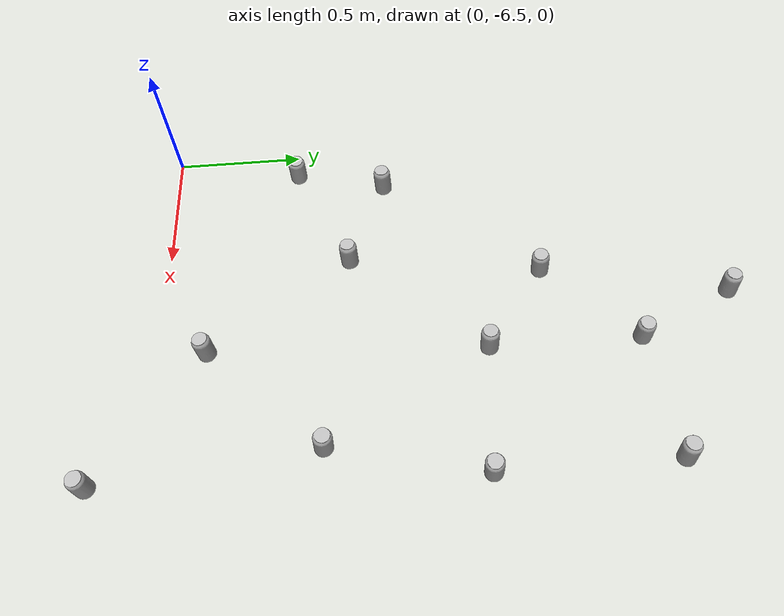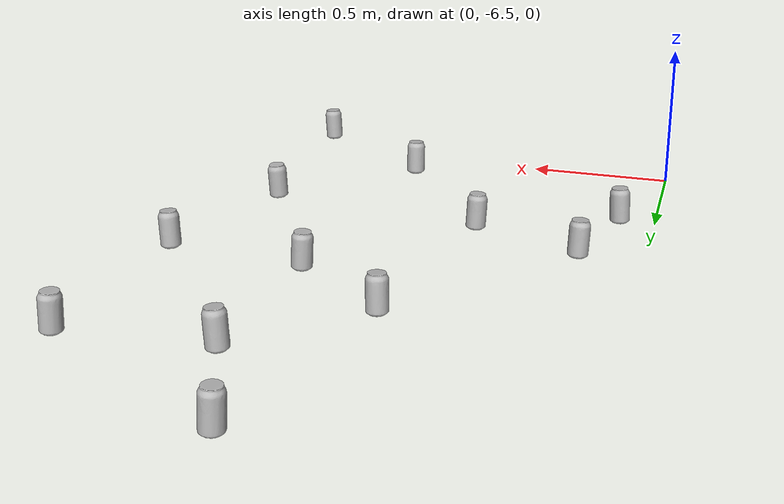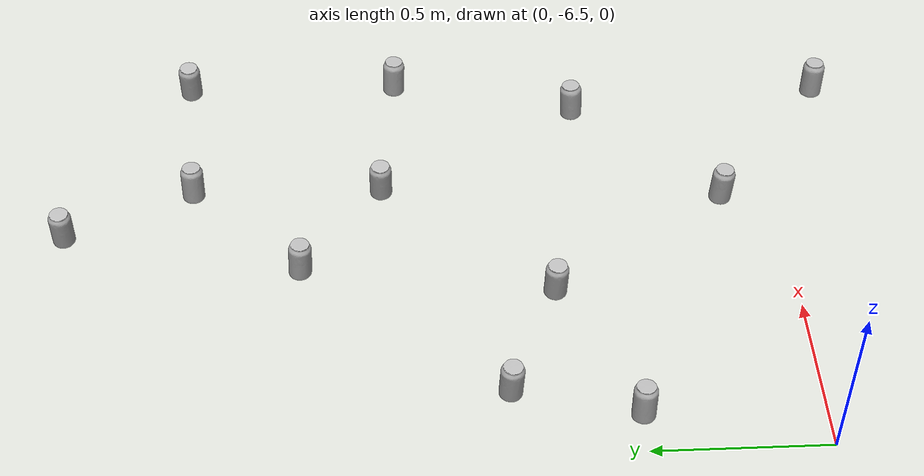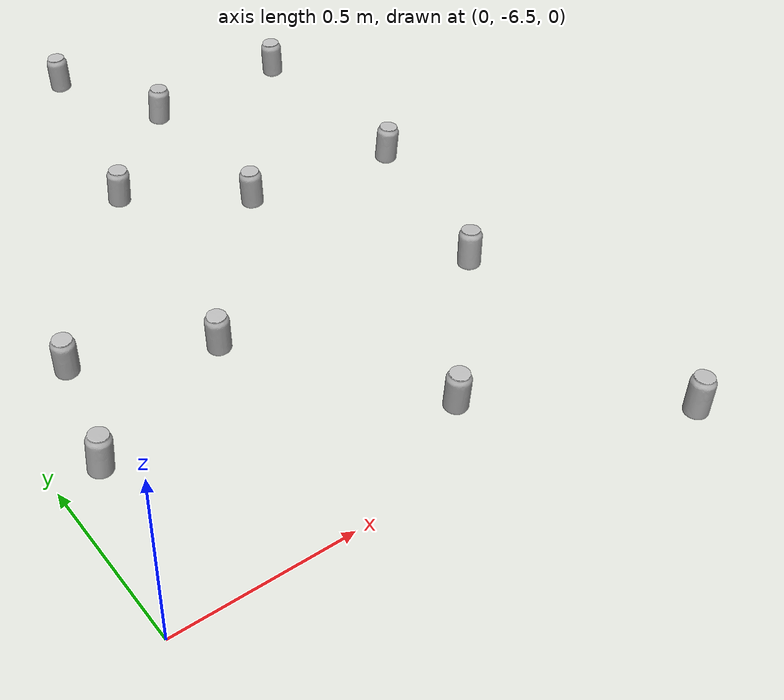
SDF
<sdf version="1.6">
 <world name="default">
  <model name="coke_can148">
   <link name="link">
    <inertial>
     <pose>0 0 0.06 0 -0 0</pose>
     <mass>0.39</mass>
     <inertia>
      <ixx>0.00055575</ixx>
      <ixy>0</ixy>
      <ixz>0</ixz>
      <iyy>0.00055575</iyy>
      <iyz>0</iyz>
      <izz>0.0001755</izz>
     </inertia>
    </inertial>
    <collision name="collision">
     <pose>0.003937 0.004724 -0.18 0 -0 0</pose>
     <geometry><mesh><uri>model://coke_can/meshes/coke_can.dae</uri></mesh></geometry>
     <surface>
      <friction><ode><mu>1</mu><mu2>1</mu2></ode></friction>
      <contact>
       <ode><kp>1e+07</kp><kd>1</kd><min_depth>0.001</min_depth><max_vel>0.1</max_vel></ode>
       <collide_bitmask>256</collide_bitmask>
      </contact>
     </surface>
    </collision>
    <visual name="visual">
     <pose>0.003937 0.004724 -0.18 0 -0 0</pose>
     <geometry><mesh><uri>model://coke_can/meshes/coke_can.dae</uri></mesh></geometry>
    </visual>
   </link>
   <pose>0.208778 -5.64338 -0.002659 -0.055082 0.00776 2.57607</pose>
  </model>
  <model name="coke_can159">
   <link name="link">
    <inertial>
     <pose>0 0 0.06 0 -0 0</pose>
     <mass>0.39</mass>
     <inertia>
      <ixx>0.00055575</ixx>
      <ixy>0</ixy>
      <ixz>0</ixz>
      <iyy>0.00055575</iyy>
      <iyz>0</iyz>
      <izz>0.0001755</izz>
     </inertia>
    </inertial>
    <collision name="collision">
     <pose>0.003937 0.004724 -0.18 0 -0 0</pose>
     <geometry><mesh><uri>model://coke_can/meshes/coke_can.dae</uri></mesh></geometry>
     <surface>
      <friction><ode><mu>1</mu><mu2>1</mu2></ode></friction>
      <contact>
       <ode><kp>1e+07</kp><kd>1</kd><min_depth>0.001</min_depth><max_vel>0.1</max_vel></ode>
       <collide_bitmask>256</collide_bitmask>
      </contact>
     </surface>
    </collision>
    <visual name="visual">
     <pose>0.003937 0.004724 -0.18 0 -0 0</pose>
     <geometry><mesh><uri>model://coke_can/meshes/coke_can.dae</uri></mesh></geometry>
    </visual>
   </link>
   <pose>1.00547 -5.29979 -0.002659 -0.055131 0.007727 1.84196</pose>
  </model>
  <model name="coke_can214">
   <link name="link">
    <inertial>
     <pose>0 0 0.06 0 -0 0</pose>
     <mass>0.39</mass>
     <inertia>
      <ixx>0.00055575</ixx>
      <ixy>0</ixy>
      <ixz>0</ixz>
      <iyy>0.00055575</iyy>
      <iyz>0</iyz>
      <izz>0.0001755</izz>
     </inertia>
    </inertial>
    <collision name="collision">
     <pose>0.003937 0.004724 -0.18 0 -0 0</pose>
     <geometry><mesh><uri>model://coke_can/meshes/coke_can.dae</uri></mesh></geometry>
     <surface>
      <friction><ode><mu>1</mu><mu2>1</mu2></ode></friction>
      <contact>
       <ode><kp>1e+07</kp><kd>1</kd><min_depth>0.001</min_depth><max_vel>0.1</max_vel></ode>
       <collide_bitmask>256</collide_bitmask>
      </contact>
     </surface>
    </collision>
    <visual name="visual">
     <pose>0.003937 0.004724 -0.18 0 -0 0</pose>
     <geometry><mesh><uri>model://coke_can/meshes/coke_can.dae</uri></mesh></geometry>
    </visual>
   </link>
   <pose>0.842294 -4.35864 -0.002659 -0.055133 0.007727 1.90653</pose>
  </model>
  <model name="coke_can280">
   <link name="link">
    <inertial>
     <pose>0 0 0.06 0 -0 0</pose>
     <mass>0.39</mass>
     <inertia>
      <ixx>0.00055575</ixx>
      <ixy>0</ixy>
      <ixz>0</ixz>
      <iyy>0.00055575</iyy>
      <iyz>0</iyz>
      <izz>0.0001755</izz>
     </inertia>
    </inertial>
    <collision name="collision">
     <pose>0.003937 0.004724 -0.18 0 -0 0</pose>
     <geometry><mesh><uri>model://coke_can/meshes/coke_can.dae</uri></mesh></geometry>
     <surface>
      <friction><ode><mu>1</mu><mu2>1</mu2></ode></friction>
      <contact>
       <ode><kp>1e+07</kp><kd>1</kd><min_depth>0.001</min_depth><max_vel>0.1</max_vel></ode>
       <collide_bitmask>256</collide_bitmask>
      </contact>
     </surface>
    </collision>
    <visual name="visual">
     <pose>0.003937 0.004724 -0.18 0 -0 0</pose>
     <geometry><mesh><uri>model://coke_can/meshes/coke_can.dae</uri></mesh></geometry>
    </visual>
   </link>
   <pose>0.116772 -5.99744 -0.002659 -0.055126 0.007732 -1.44704</pose>
  </model>
  <model name="coke_can413">
   <link name="link">
    <inertial>
     <pose>0 0 0.06 0 -0 0</pose>
     <mass>0.39</mass>
     <inertia>
      <ixx>0.00055575</ixx>
      <ixy>0</ixy>
      <ixz>0</ixz>
      <iyy>0.00055575</iyy>
      <iyz>0</iyz>
      <izz>0.0001755</izz>
     </inertia>
    </inertial>
    <collision name="collision">
     <pose>0.003937 0.004724 -0.18 0 -0 0</pose>
     <geometry><mesh><uri>model://coke_can/meshes/coke_can.dae</uri></mesh></geometry>
     <surface>
      <friction><ode><mu>1</mu><mu2>1</mu2></ode></friction>
      <contact>
       <ode><kp>1e+07</kp><kd>1</kd><min_depth>0.001</min_depth><max_vel>0.1</max_vel></ode>
       <collide_bitmask>256</collide_bitmask>
      </contact>
     </surface>
    </collision>
    <visual name="visual">
     <pose>0.003937 0.004724 -0.18 0 -0 0</pose>
     <geometry><mesh><uri>model://coke_can/meshes/coke_can.dae</uri></mesh></geometry>
    </visual>
   </link>
   <pose>0.57572 -5.79576 -0.002659 -0.055102 0.007748 2.26488</pose>
  </model>
  <model name="coke_can446">
   <link name="link">
    <inertial>
     <pose>0 0 0.06 0 -0 0</pose>
     <mass>0.39</mass>
     <inertia>
      <ixx>0.00055575</ixx>
      <ixy>0</ixy>
      <ixz>0</ixz>
      <iyy>0.00055575</iyy>
      <iyz>0</iyz>
      <izz>0.0001755</izz>
     </inertia>
    </inertial>
    <collision name="collision">
     <pose>0.003937 0.004724 -0.18 0 -0 0</pose>
     <geometry><mesh><uri>model://coke_can/meshes/coke_can.dae</uri></mesh></geometry>
     <surface>
      <friction><ode><mu>1</mu><mu2>1</mu2></ode></friction>
      <contact>
       <ode><kp>1e+07</kp><kd>1</kd><min_depth>0.001</min_depth><max_vel>0.1</max_vel></ode>
       <collide_bitmask>256</collide_bitmask>
      </contact>
     </surface>
    </collision>
    <visual name="visual">
     <pose>0.003937 0.004724 -0.18 0 -0 0</pose>
     <geometry><mesh><uri>model://coke_can/meshes/coke_can.dae</uri></mesh></geometry>
    </visual>
   </link>
   <pose>0.681893 -5.06092 -0.002659 -0.055132 0.007728 -2.63439</pose>
  </model>
  <model name="coke_can494">
   <link name="link">
    <inertial>
     <pose>0 0 0.06 0 -0 0</pose>
     <mass>0.39</mass>
     <inertia>
      <ixx>0.00055575</ixx>
      <ixy>0</ixy>
      <ixz>0</ixz>
      <iyy>0.00055575</iyy>
      <iyz>0</iyz>
      <izz>0.0001755</izz>
     </inertia>
    </inertial>
    <collision name="collision">
     <pose>0.003937 0.004724 -0.18 0 -0 0</pose>
     <geometry><mesh><uri>model://coke_can/meshes/coke_can.dae</uri></mesh></geometry>
     <surface>
      <friction><ode><mu>1</mu><mu2>1</mu2></ode></friction>
      <contact>
       <ode><kp>1e+07</kp><kd>1</kd><min_depth>0.001</min_depth><max_vel>0.1</max_vel></ode>
       <collide_bitmask>256</collide_bitmask>
      </contact>
     </surface>
    </collision>
    <visual name="visual">
     <pose>0.003937 0.004724 -0.18 0 -0 0</pose>
     <geometry><mesh><uri>model://coke_can/meshes/coke_can.dae</uri></mesh></geometry>
    </visual>
   </link>
   <pose>1.47734 -5.34762 -0.002659 -0.055096 0.007751 -1.92999</pose>
  </model>
  <model name="coke_can525">
   <link name="link">
    <inertial>
     <pose>0 0 0.06 0 -0 0</pose>
     <mass>0.39</mass>
     <inertia>
      <ixx>0.00055575</ixx>
      <ixy>0</ixy>
      <ixz>0</ixz>
      <iyy>0.00055575</iyy>
      <iyz>0</iyz>
      <izz>0.0001755</izz>
     </inertia>
    </inertial>
    <collision name="collision">
     <pose>0.003937 0.004724 -0.18 0 -0 0</pose>
     <geometry><mesh><uri>model://coke_can/meshes/coke_can.dae</uri></mesh></geometry>
     <surface>
      <friction><ode><mu>1</mu><mu2>1</mu2></ode></friction>
      <contact>
       <ode><kp>1e+07</kp><kd>1</kd><min_depth>0.001</min_depth><max_vel>0.1</max_vel></ode>
       <collide_bitmask>256</collide_bitmask>
      </contact>
     </surface>
    </collision>
    <visual name="visual">
     <pose>0.003937 0.004724 -0.18 0 -0 0</pose>
     <geometry><mesh><uri>model://coke_can/meshes/coke_can.dae</uri></mesh></geometry>
    </visual>
   </link>
   <pose>1.4144 -6.69383 -0.002659 -0.055115 0.007739 -1.55391</pose>
  </model>
  <model name="coke_can543">
   <link name="link">
    <inertial>
     <pose>0 0 0.06 0 -0 0</pose>
     <mass>0.39</mass>
     <inertia>
      <ixx>0.00055575</ixx>
      <ixy>0</ixy>
      <ixz>0</ixz>
      <iyy>0.00055575</iyy>
      <iyz>0</iyz>
      <izz>0.0001755</izz>
     </inertia>
    </inertial>
    <collision name="collision">
     <pose>0.003937 0.004724 -0.18 0 -0 0</pose>
     <geometry><mesh><uri>model://coke_can/meshes/coke_can.dae</uri></mesh></geometry>
     <surface>
      <friction><ode><mu>1</mu><mu2>1</mu2></ode></friction>
      <contact>
       <ode><kp>1e+07</kp><kd>1</kd><min_depth>0.001</min_depth><max_vel>0.1</max_vel></ode>
       <collide_bitmask>256</collide_bitmask>
      </contact>
     </surface>
    </collision>
    <visual name="visual">
     <pose>0.003937 0.004724 -0.18 0 -0 0</pose>
     <geometry><mesh><uri>model://coke_can/meshes/coke_can.dae</uri></mesh></geometry>
    </visual>
   </link>
   <pose>1.4853 -4.69572 -0.002659 -0.055133 0.007728 1.78814</pose>
  </model>
  <model name="coke_can565">
   <link name="link">
    <inertial>
     <pose>0 0 0.06 0 -0 0</pose>
     <mass>0.39</mass>
     <inertia>
      <ixx>0.00055575</ixx>
      <ixy>0</ixy>
      <ixz>0</ixz>
      <iyy>0.00055575</iyy>
      <iyz>0</iyz>
      <izz>0.0001755</izz>
     </inertia>
    </inertial>
    <collision name="collision">
     <pose>0.003937 0.004724 -0.18 0 -0 0</pose>
     <geometry><mesh><uri>model://coke_can/meshes/coke_can.dae</uri></mesh></geometry>
     <surface>
      <friction><ode><mu>1</mu><mu2>1</mu2></ode></friction>
      <contact>
       <ode><kp>1e+07</kp><kd>1</kd><min_depth>0.001</min_depth><max_vel>0.1</max_vel></ode>
       <collide_bitmask>256</collide_bitmask>
      </contact>
     </surface>
    </collision>
    <visual name="visual">
     <pose>0.003937 0.004724 -0.18 0 -0 0</pose>
     <geometry><mesh><uri>model://coke_can/meshes/coke_can.dae</uri></mesh></geometry>
    </visual>
   </link>
   <pose>1.34166 -5.91024 -0.002659 -0.055089 0.007759 -0.36164</pose>
  </model>
  <model name="coke_can591">
   <link name="link">
    <inertial>
     <pose>0 0 0.06 0 -0 0</pose>
     <mass>0.39</mass>
     <inertia>
      <ixx>0.00055575</ixx>
      <ixy>0</ixy>
      <ixz>0</ixz>
      <iyy>0.00055575</iyy>
      <iyz>0</iyz>
      <izz>0.0001755</izz>
     </inertia>
    </inertial>
    <collision name="collision">
     <pose>0.003937 0.004724 -0.18 0 -0 0</pose>
     <geometry><mesh><uri>model://coke_can/meshes/coke_can.dae</uri></mesh></geometry>
     <surface>
      <friction><ode><mu>1</mu><mu2>1</mu2></ode></friction>
      <contact>
       <ode><kp>1e+07</kp><kd>1</kd><min_depth>0.001</min_depth><max_vel>0.1</max_vel></ode>
       <collide_bitmask>256</collide_bitmask>
      </contact>
     </surface>
    </collision>
    <visual name="visual">
     <pose>0.003937 0.004724 -0.18 0 -0 0</pose>
     <geometry><mesh><uri>model://coke_can/meshes/coke_can.dae</uri></mesh></geometry>
    </visual>
   </link>
   <pose>1.01123 -4.7328 -0.002659 -0.055107 0.007745 -1.67919</pose>
  </model>
  <model name="coke_can806">
   <link name="link">
    <inertial>
     <pose>0 0 0.06 0 -0 0</pose>
     <mass>0.39</mass>
     <inertia>
      <ixx>0.00055575</ixx>
      <ixy>0</ixy>
      <ixz>0</ixz>
      <iyy>0.00055575</iyy>
      <iyz>0</iyz>
      <izz>0.0001755</izz>
     </inertia>
    </inertial>
    <collision name="collision">
     <pose>0.003937 0.004724 -0.18 0 -0 0</pose>
     <geometry><mesh><uri>model://coke_can/meshes/coke_can.dae</uri></mesh></geometry>
     <surface>
      <friction><ode><mu>1</mu><mu2>1</mu2></ode></friction>
      <contact>
       <ode><kp>1e+07</kp><kd>1</kd><min_depth>0.001</min_depth><max_vel>0.1</max_vel></ode>
       <collide_bitmask>256</collide_bitmask>
      </contact>
     </surface>
    </collision>
    <visual name="visual">
     <pose>0.003937 0.004724 -0.18 0 -0 0</pose>
     <geometry><mesh><uri>model://coke_can/meshes/coke_can.dae</uri></mesh></geometry>
    </visual>
   </link>
   <pose>0.94092 -6.32699 -0.002659 -0.055136 0.007726 -2.95363</pose>
  </model>
 </world>
</sdf>
